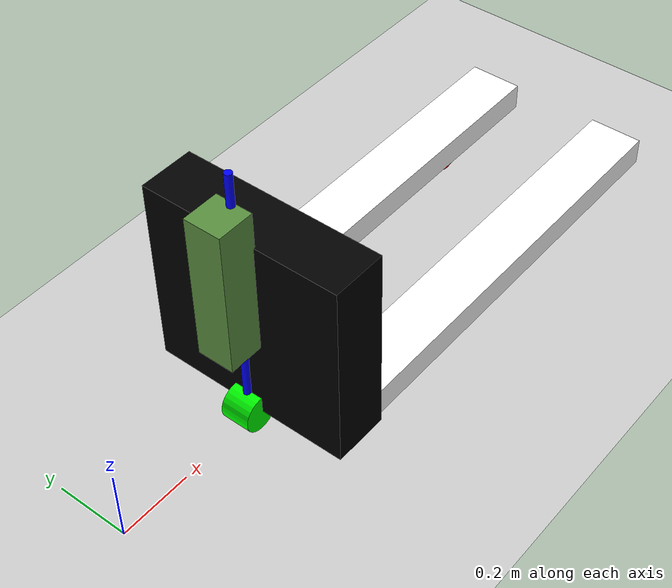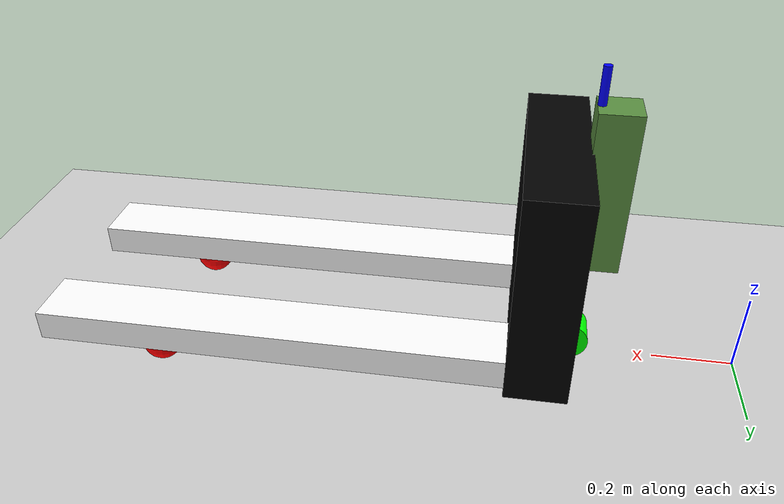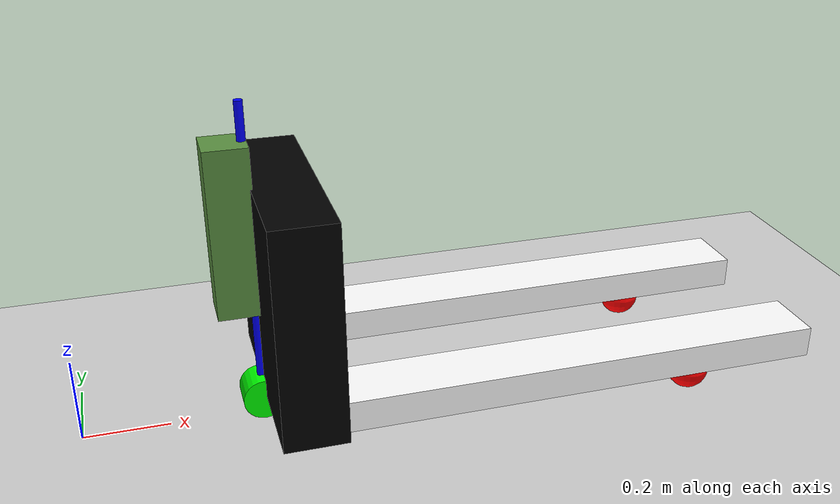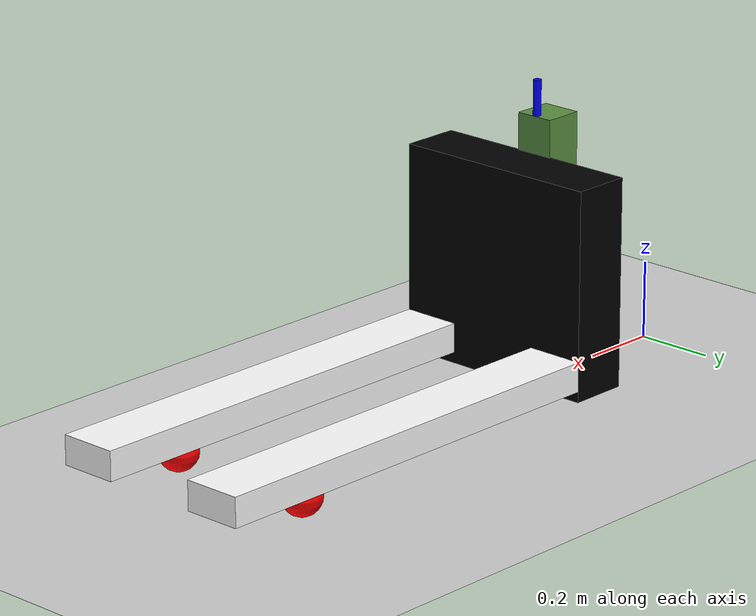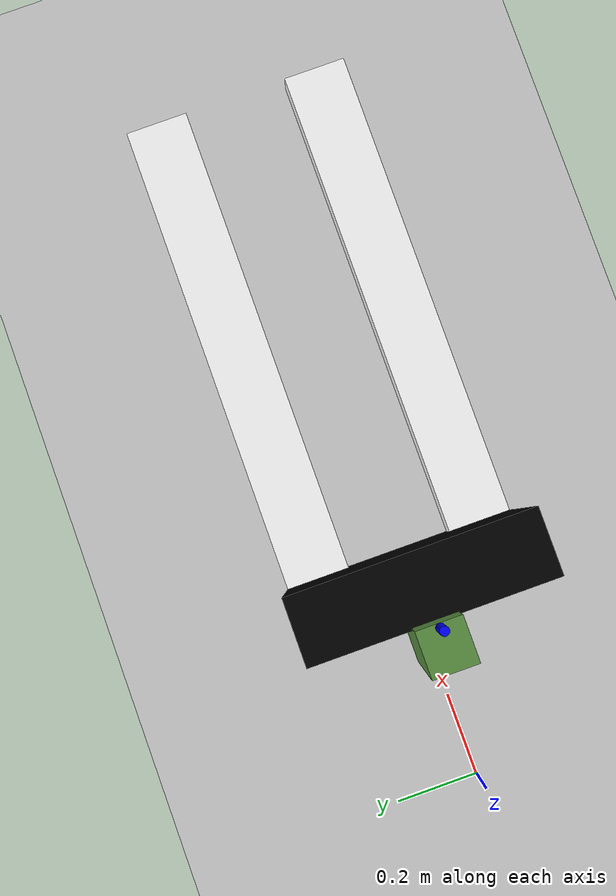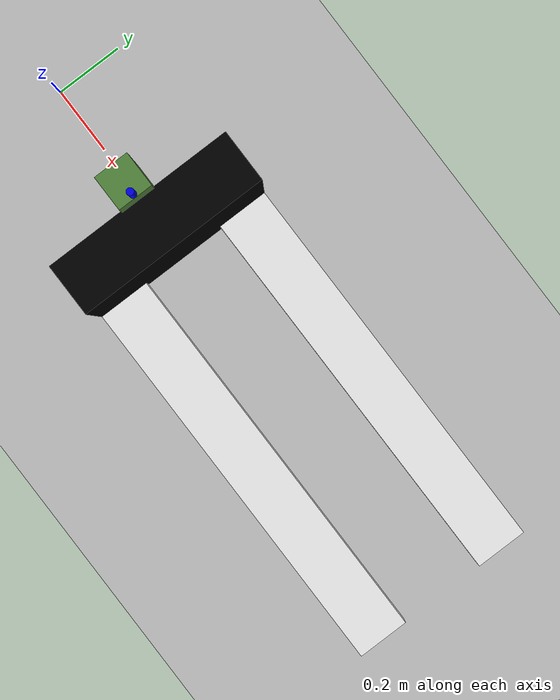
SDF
<?xml version="1.0" ?>
<sdf version="1.8">
    <world name="empty_world">
        <physics name="1ms" type="ignored">
            <max_step_size>0.001</max_step_size>
            <real_time_factor>1.0</real_time_factor>
        </physics>
        <plugin
            filename="libignition-gazebo-physics-system.so"
            name="ignition::gazebo::systems::Physics">
        </plugin>
        <plugin
            filename="libignition-gazebo-user-commands-system.so"
            name="ignition::gazebo::systems::UserCommands">
        </plugin>
        <plugin
            filename="libignition-gazebo-scene-broadcaster-system.so"
            name="ignition::gazebo::systems::SceneBroadcaster">
        </plugin>
        <plugin
        filename="libignition-gazebo-sensors-system.so"
        name="ignition::gazebo::systems::Sensors">
        <render_engine>ogre2</render_engine>
        </plugin>

        <gui fullscreen="0">

            <!-- 3D scene -->
            <plugin filename="GzScene3D" name="3D View">
                <ignition-gui>
                <title>3D View</title>
                <property type="bool" key="showTitleBar">false</property>
                <property type="string" key="state">docked</property>
                </ignition-gui>

                <engine>ogre2</engine>
                <scene>scene</scene>
                <ambient_light>0.4 0.4 0.4</ambient_light>
                <background_color>0.8 0.8 0.8</background_color>
            </plugin>

            <!-- World control -->
            <plugin filename="WorldControl" name="World control">
                <ignition-gui>
                <title>World control</title>
                <property type="bool" key="showTitleBar">false</property>
                <property type="bool" key="resizable">false</property>
                <property type="double" key="height">72</property>
                <property type="double" key="width">121</property>
                <property type="double" key="z">1</property>

                <property type="string" key="state">floating</property>
                <anchors target="3D View">
                    <line own="left" target="left"/>
                    <line own="bottom" target="bottom"/>
                </anchors>
                </ignition-gui>

                <play_pause>true</play_pause>
                <step>true</step>
                <start_paused>true</start_paused>
                <service>/world/Moving_robot/control</service>
                <stats_topic>/world/Moving_robot/stats</stats_topic>
            </plugin>

            <!-- World statistics -->
            <plugin filename="WorldStats" name="World stats">
                <ignition-gui>
                <title>World stats</title>
                <property type="bool" key="showTitleBar">false</property>
                <property type="bool" key="resizable">false</property>
                <property type="double" key="height">110</property>
                <property type="double" key="width">290</property>
                <property type="double" key="z">1</property>

                <property type="string" key="state">floating</property>
                <anchors target="3D View">
                    <line own="right" target="right"/>
                    <line own="bottom" target="bottom"/>
                </anchors>
                </ignition-gui>

                <sim_time>true</sim_time>
                <real_time>true</real_time>
                <real_time_factor>true</real_time_factor>
                <iterations>true</iterations>
                <topic>/world/Moving_robot/stats</topic>

            </plugin>

            <!-- Entity tree -->
            <plugin filename="EntityTree" name="Entity tree">
            </plugin>

            <!-- KeyPublisher plugin-->
            <plugin filename="KeyPublisher" name="Key Publisher"/>

        </gui>

        <light type="directional" name="sun">
            <cast_shadows>true</cast_shadows>
            <pose>0 0 10 0 0 0</pose>
            <diffuse>0.8 0.8 0.8 1</diffuse>
            <specular>0.2 0.2 0.2 1</specular>
            <attenuation>
                <range>1000</range>
                <constant>0.9</constant>
                <linear>0.01</linear>
                <quadratic>0.001</quadratic>
            </attenuation>
            <direction>-0.5 0.1 -0.9</direction>
        </light>

        <model name="ground_plane">
            <static>true</static>
            <link name="link">
                <collision name="collision">
                <geometry>
                    <plane>
                    <normal>0 0 1</normal>
                    </plane>
                </geometry>
                </collision>
                <visual name="visual">
                <geometry>
                    <plane>
                    <normal>0 0 1</normal>
                    <size>100 100</size>
                    </plane>
                </geometry>
                <material>
                    <ambient>0.8 0.8 0.8 1</ambient>
                    <diffuse>0.8 0.8 0.8 1</diffuse>
                    <specular>0.8 0.8 0.8 1</specular>
                </material>
                </visual>
            </link>
        </model>

        <!--agv_şasi-->
        <model name='agv' canonical_link='chassis'>
        <pose relative_to='world'>0 0 0 0 0 0</pose>
            <link name='chassis'>
                <pose relative_to='__model__'>0.5 0 0.32 0 0 0</pose>
                <!--inertial properties of the link mass, inertia matix-->
                <inertial>
                    <mass>1.14395</mass>
                    <inertia>
                        <ixx>0.095329</ixx>
                        <ixy>0</ixy>
                        <ixz>0</ixz>
                        <iyy>0.381317</iyy>
                        <iyz>0</iyz>
                        <izz>0.476646</izz>
                    </inertia>
                </inertial>
                <visual name='visual'>
                    <geometry>
                        <box>
                            <size>0.15 0.55 0.53</size>
                        </box>
                    </geometry>
                    <!--color black-->
                    <material>
                        <ambient>0 0 0 1</ambient>
                        <diffuse>0 0 0 1</diffuse>
                        <specular>0 0 0 1</specular>
                    </material>
                    <collision name='collision'>
                        <geometry>
                            <box>
                                <size>0.15 0.55 0.53</size>
                            </box>
                        </geometry>
                    </collision>
                </visual>
                <frame name="lidar_frame" attached_to='chassis'>
                    <pose>0.8 0 0.5 0 0 0</pose>
                </frame>
                <sensor name='gpu_lidar' type='gpu_lidar'>"
                    <pose relative_to='lidar_frame'>0 0 0 0 0 0</pose>
                    <topic>lidar</topic>
                    <update_rate>10</update_rate>
                    <ray>
                        <scan>
                            <horizontal>
                                <samples>640</samples>
                                <resolution>1</resolution>
                                <min_angle>-1.396263</min_angle>
                                <max_angle>1.396263</max_angle>
                            </horizontal>
                            <vertical>
                                <samples>1</samples>
                                <resolution>0.01</resolution>
                                <min_angle>0</min_angle>
                                <max_angle>0</max_angle>
                            </vertical>
                        </scan>
                        <range>
                            <min>0.08</min>
                            <max>10.0</max>
                            <resolution>0.01</resolution>
                        </range>
                    </ray>
                    <always_on>1</always_on>
                    <visualize>true</visualize>
                </sensor>
            </link>
            <link name='small_box'>
                <pose relative_to='chassis'>-0.12 0 0.16 0 0 0</pose>
                <!--inertial properties of the link mass, inertia matix-->
                <inertial>
                    <mass>1.14395</mass>
                    <inertia>
                        <ixx>0.095329</ixx>
                        <ixy>0</ixy>
                        <ixz>0</ixz>
                        <iyy>0.381317</iyy>
                        <iyz>0</iyz>
                        <izz>0.476646</izz>
                    </inertia>
                </inertial>
                <visual name='visual'>
                    <geometry>
                        <box>
                            <size>0.1 0.1 0.4</size>
                        </box>
                    </geometry>
                    <!--color black-->
                    <material>
                        <ambient>0.35 0.56 0.25 1</ambient>
                        <diffuse>0.35 0.56 0.25 1</diffuse>
                        <specular>0.35 0.56 0.25 1</specular>
                    </material>
                    <collision name='collision'>
                        <geometry>
                            <box>
                                <size>0.1 0.1 0.4</size>
                            </box>
                        </geometry>
                    </collision>
                </visual>
            </link>
            <!--left fork-->
            <link name='left_fork'>
                <pose relative_to='chassis'>0.65 0.2 -0.2 0 0 0</pose>
                <!--inertial properties of the link mass, inertia matix-->
                <inertial>
                    <mass>1.14395</mass>
                    <inertia>
                        <ixx>0.095329</ixx>
                        <ixy>0</ixy>
                        <ixz>0</ixz>
                        <iyy>0.381317</iyy>
                        <iyz>0</iyz>
                        <izz>0.476646</izz>
                    </inertia>
                </inertial>
                <visual name='visual'>
                    <geometry>
                        <box>
                            <size>1.15 0.15 0.075</size>
                        </box>
                    </geometry>
                    <!--color white-->
                    <material>
                        <ambient>1 1 1 1</ambient>
                        <diffuse>1 1 1 1</diffuse>
                        <specular>1 1 1 1</specular>
                    </material>
                    <collision name='collision'>
                        <geometry>
                            <box>
                                <size>1.15 0.15 0.075</size>
                            </box>
                        </geometry>
                    </collision>
                </visual>
            </link>
            <!--right fork-->
            <link name='right_fork'>
                <pose relative_to='chassis'>0.65 -0.2 -0.2 0 0 0</pose>
                <!--inertial properties of the link mass, inertia matix-->
                <inertial>
                    <mass>1.14395</mass>
                    <inertia>
                        <ixx>0.095329</ixx>
                        <ixy>0</ixy>
                        <ixz>0</ixz>
                        <iyy>0.381317</iyy>
                        <iyz>0</iyz>
                        <izz>0.476646</izz>
                    </inertia>
                </inertial>
                <visual name='visual'>
                    <geometry>
                        <box>
                            <size>1.15 0.15 0.075</size>
                        </box>
                    </geometry>
                    <!--color white-->
                    <material>
                        <ambient>1 1 1 1</ambient>
                        <diffuse>1 1 1 1</diffuse>
                        <specular>1 1 1 1</specular>
                    </material>
                    <collision name='collision'>
                        <geometry>
                            <box>
                                <size>1.15 0.15 0.075</size>
                            </box>
                        </geometry>
                    </collision>
                </visual>
            </link>
            <!--left wheel-->
            <link name='left_wheel'>
                <pose relative_to="chassis">0.94 0.2 -0.265 0 0 0</pose>
                <inertial>
                    <mass>1</mass>
                    <inertia>
                        <ixx>0.043333</ixx>
                        <ixy>0</ixy>
                        <ixz>0</ixz>
                        <iyy>0.043333</iyy>
                        <iyz>0</iyz>
                        <izz>0.08</izz>
                    </inertia>
                </inertial>
                <visual name='visual'>
                    <geometry>
                        <sphere>
                            <radius>0.05</radius>
                        </sphere>
                    </geometry>
                    <material>
                        <ambient>1.0 0.0 0.0 1</ambient>
                        <diffuse>1.0 0.0 0.0 1</diffuse>
                        <specular>1.0 0.0 0.0 1</specular>
                    </material>
                </visual>
                <collision name='collision'>
                    <geometry>
                        <sphere>
                            <radius>0.05</radius>
                        </sphere>
                    </geometry>
                </collision>
            </link>
            <!--right wheel-->
            <link name='right_wheel'>
                <pose relative_to="chassis">0.94 -0.2 -0.265 0 0 0</pose>
                <inertial>
                    <mass>1</mass>
                    <inertia>
                        <ixx>0.043333</ixx>
                        <ixy>0</ixy>
                        <ixz>0</ixz>
                        <iyy>0.043333</iyy>
                        <iyz>0</iyz>
                        <izz>0.08</izz>
                    </inertia>
                </inertial>
                <visual name='visual'>
                    <geometry>
                        <sphere>
                            <radius>0.05</radius>
                        </sphere>
                    </geometry>
                    <material>
                        <ambient>1.0 0.0 0.0 1</ambient>
                        <diffuse>1.0 0.0 0.0 1</diffuse>
                        <specular>1.0 0.0 0.0 1</specular>
                    </material>
                </visual>
                <collision name='collision'>
                    <geometry>
                        <sphere>
                            <radius>0.05</radius>
                        </sphere>
                    </geometry>
                </collision>
            </link>
            <!--steering-->

            <frame name="steering_frame" attached_to='chassis'>
                <pose>-0.08 0 0.1 0 0 -1.5707</pose>
            </frame>

            <link name='steering_cylinder'>
                <pose relative_to="steering_frame"></pose>
                <inertial>
                    <mass>1</mass>
                    <inertia>
                        <ixx>0.043333</ixx>
                        <ixy>0</ixy>
                        <ixz>0</ixz>
                        <iyy>0.043333</iyy>
                        <iyz>0</iyz>
                        <izz>0.08</izz>
                    </inertia>
                </inertial>
                <visual name='visual'>
                    <geometry>
                        <cylinder>
                            <radius>0.01</radius>
                            <length>0.7</length>
                        </cylinder>
                    </geometry>
                    <material>
                        <ambient>0.0 0.0 1.0 1</ambient>
                        <diffuse>0.0 0.0 1.0 1</diffuse>
                        <specular>0.0 0.0 1.0 1</specular>
                    </material>
                </visual>
                <collision name='collision'>
                    <geometry>
                        <cylinder>
                            <radius>0.01</radius>
                            <length>0.7</length>
                        </cylinder>
                    </geometry>
                </collision>
            </link>
            <!--front wheel-->
            <link name='steering_wheel'>
                <pose relative_to="steering_cylinder">0 0 -0.37 0 -1.5707 0</pose>
                <inertial>
                    <mass>1</mass>
                    <inertia>
                        <ixx>0.043333</ixx>
                        <ixy>0</ixy>
                        <ixz>0</ixz>
                        <iyy>0.043333</iyy>
                        <iyz>0</iyz>
                        <izz>0.08</izz>
                    </inertia>
                </inertial>
                <visual name='visual'>
                    <geometry>
                        <cylinder>
                            <radius>0.05</radius>
                            <length>0.08</length>
                        </cylinder>
                    </geometry>
                    <material>
                        <ambient>0.0 1.0 0.0 1</ambient>
                        <diffuse>0.0 1.0 0.0 1</diffuse>
                        <specular>0.0 1.0 0.0 1</specular>
                    </material>
                </visual>
                <collision name='collision'>
                    <geometry>
                        <cylinder>
                            <radius>0.05</radius>
                            <length>0.08</length>
                        </cylinder>
                    </geometry>
                </collision>
            </link>
            <!--CONNECTIONS-->
            <joint name='left_wheel_joint' type='ball'>
                <pose relative_to='left_wheel'/>
                <parent>chassis</parent>
                <child>left_wheel</child>
                        <!--negative infinity-->
                        <!--positive infinity-->
            </joint>

            <joint name='right_wheel_joint' type='ball'>
                <pose relative_to='right_wheel'/>
                <parent>chassis</parent>
                <child>right_wheel</child>
                        <!--negative infinity-->
                        <!--positive infinity-->
            </joint>

            <joint name='steering_cylinder_joint' type='revolute'>
                <pose relative_to='steering_cylinder'/>
                <parent>chassis</parent>
                <child>steering_cylinder</child>
                <axis>
                    <xyz expressed_in='__model__'>0 0 1</xyz>
                    <limit>
                        <lower>-1.79769e+308</lower>  <!--negative infinity-->
                        <upper>1.79769e+308</upper>    <!--positive infinity-->
                    </limit>
                </axis>
            </joint>

            <joint name='steering_wheel_joint' type='revolute'>
                <pose relative_to='steering_wheel'/>
                <parent>chassis</parent>
                <child>steering_wheel</child>
                <axis>
                   <xyz expressed_in='__model__'>0 1 0</xyz>
                    <limit>
                        <lower>-1.79769e+308</lower>  <!--negative infinity-->
                        <upper>1.79769e+308</upper>    <!--positive infinity-->
                    </limit>
                </axis>
            </joint>

            <joint name='right_fork_joint' type='fixed'>
                <pose relative_to='right_fork'/>
                <parent>chassis</parent>
                <child>right_fork</child>
                <axis>
                    <xyz expressed_in='__model__'>0 1 0</xyz>
                </axis>
            </joint>

            <joint name='left_fork_joint' type='fixed'>
                <pose relative_to='left_fork'/>
                <parent>chassis</parent>
                <child>left_fork</child>
                <axis>
                    <xyz expressed_in='__model__'>0 1 0</xyz>
                </axis>
            </joint>

            <joint name='small_box_joint' type='fixed'>
                <pose relative_to='small_box'/>
                <parent>chassis</parent>
                <child>small_box</child>
                <axis>
                    <xyz expressed_in='__model__'>0 1 0</xyz>
                </axis>
            </joint>

            <!--diff drive plugin-->
            <plugin
                filename="libignition-gazebo-diff-drive-system.so"
                name="ignition::gazebo::systems::DiffDrive">
                <left_joint>steering_cylinder_joint</left_joint>
                <right_joint>steering_wheel_joint</right_joint>
                <wheel_separation>0.4</wheel_separation>
                <wheel_radius>0.05</wheel_radius>
                <odom_publish_frequency>1</odom_publish_frequency>
                <topic>cmd_vel</topic>
            </plugin>
        </model>

        <!-- Moving Forward-->
        <plugin filename="libignition-gazebo-triggered-publisher-system.so"
                name="ignition::gazebo::systems::TriggeredPublisher">
            <input type="ignition.msgs.Int32" topic="/keyboard/keypress">
                <match field="data">16777235</match>
            </input>
            <output type="ignition.msgs.Twist" topic="/cmd_vel">
                linear: {x: 0.5}, angular: {z: 0.0}
            </output>
        </plugin>

        <!-- Moving Backward-->
        <plugin filename="libignition-gazebo-triggered-publisher-system.so"
                name="ignition::gazebo::systems::TriggeredPublisher">
            <input type="ignition.msgs.Int32" topic="/keyboard/keypress">
                <match field="data">16777237</match>
            </input>
            <output type="ignition.msgs.Twist" topic="/cmd_vel">
                linear: {x: -0.5}, angular: {z: 0.0}
            </output>
        </plugin>

        <!-- Rotating right-->
        <plugin filename="libignition-gazebo-triggered-publisher-system.so"
                name="ignition::gazebo::systems::TriggeredPublisher">
            <input type="ignition.msgs.Int32" topic="/keyboard/keypress">
                <match field="data">16777236</match>
            </input>
            <output type="ignition.msgs.Twist" topic="/cmd_vel">
                linear: {x: 0.0}, angular: {z: -0.5}
            </output>
        </plugin>

        <!--Rotating left-->
        <plugin filename="libignition-gazebo-triggered-publisher-system.so"
                name="ignition::gazebo::systems::TriggeredPublisher">
            <input type="ignition.msgs.Int32" topic="/keyboard/keypress">
                <match field="data">16777234</match>
            </input>
            <output type="ignition.msgs.Twist" topic="/cmd_vel">
                linear: {x: 0.0}, angular: {z: 0.5}
            </output>
        </plugin>
    </world>
</sdf>
